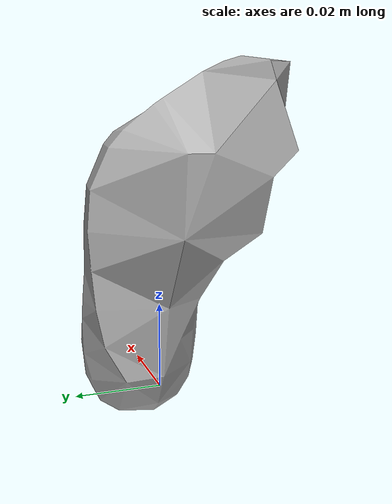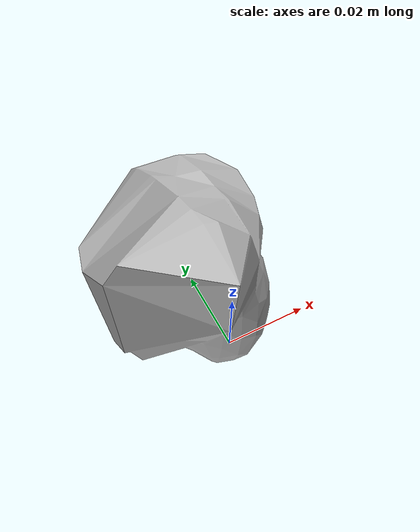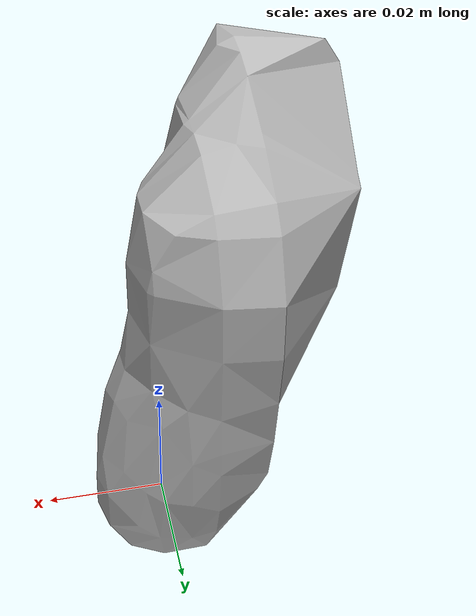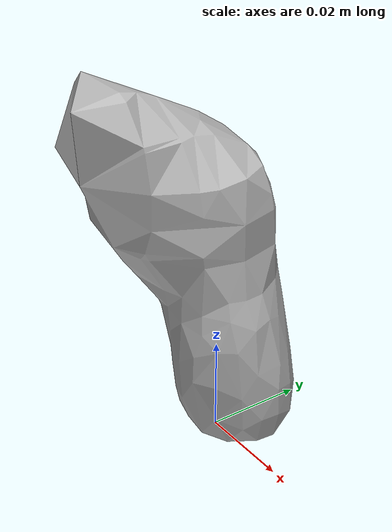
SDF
<?xml version='1.0'?>
<sdf version="1.4">
  <model name="041_small_marker">
    <static>false</static>
    <link name="link">
      <inertial>
        <pose>-0.00964422626322914 0.00019086795712704591 0.03750776829872485 -2.773685050402166 -0.16277707563970242 -0.4469298929338215</pose>
        <mass>0.005302919523866576</mass>
        <inertia>
          <ixx>2.5071882503516994e-06</ixx>
          <ixy>1.876527063729356e-23</ixy>
          <ixz>4.807002815477051e-22</ixz>
          <iyy>2.439117070584436e-06</iyy>
          <iyz>-1.5156524998791975e-22</iyz>
          <izz>6.290244494970608e-07</izz>
        </inertia>
      </inertial>
      <collision name="collision">
        <geometry>
          <mesh>
            <!-- Use a downsampled mesh for collisions -->
            <uri>model:///041_small_marker/041_small_marker_250_collision.stl</uri>
	        </mesh>
        </geometry>
        <surface>
      </surface>
      </collision>
      <visual name="visual">
        <geometry>
          <mesh>
            <uri>model:///041_small_marker/textured.obj</uri>
	        </mesh>
        </geometry>
        <material>
          <script>
            <uri>model:///041_small_marker/041_small_marker.material</uri>
            <name>041_small_marker</name>
          </script>
        </material>
      </visual>
    </link>
  </model>
</sdf>
